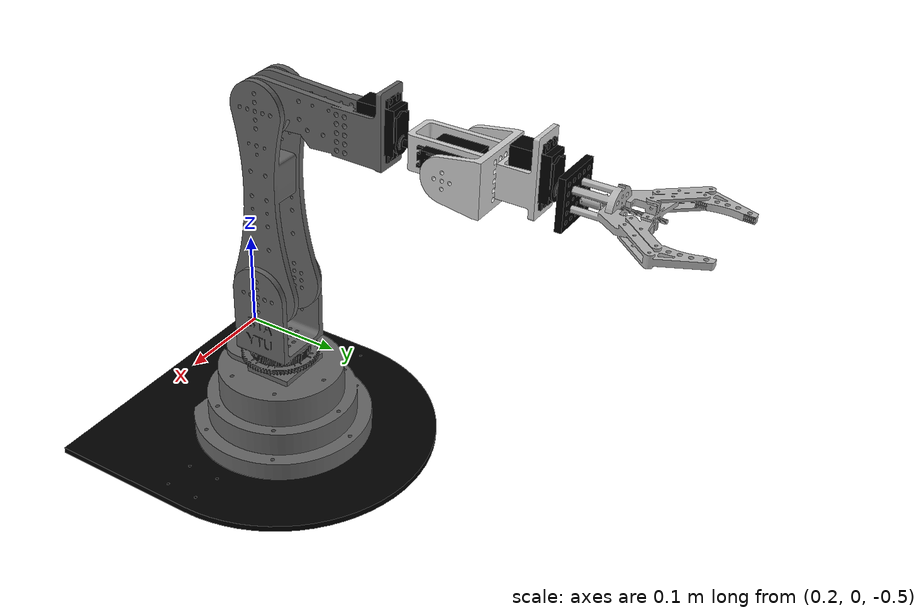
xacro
<?xml version="1.0" encoding="utf-8" ?>
<!-- |    This document was autogenerated by xacro from /home/henry/ROS/simulation_ws/src/simulation/robotarm_description/urdf/robotarm.xacro | -->
<!-- |    EDITING THIS FILE BY HAND IS NOT RECOMMENDED                                 | -->
<robot name="robotarm">
    <material name="silver">
        <color rgba="0.700 0.700 0.700 1.000" />
    </material>
    <material name="black">
        <color rgba="0.0 0.0 0.0 1.0" />
    </material>
    <material name="blue">
        <color rgba="0.0 0.0 0.8 1.0" />
    </material>
    <material name="green">
        <color rgba="0.0 1.0 0.0 1.0" />
    </material>
    <material name="grey">
        <color rgba="0.4 0.4 0.4 1.0" />
    </material>
    <material name="orange">
        <color rgba="1.0 0.423529411765 0.0392156862745 1.0" />
    </material>
    <material name="brown">
        <color rgba="0.870588235294 0.811764705882 0.764705882353 1.0" />
    </material>
    <material name="red">
        <color rgba="0.4 0.2 0.2 1.0" />
    </material>
    <material name="white">
        <color rgba="0.8 0.8 0.8 1.0" />
    </material>
    <transmission name="joint_1_tran">
        <type>transmission_interface/SimpleTransmission</type>
        <joint name="joint_1">
            <hardwareInterface>hardware_interface/PositionJointInterface</hardwareInterface>
        </joint>
        <actuator name="joint_1_actr">
            <hardwareInterface>hardware_interface/PositionJointInterface</hardwareInterface>
            <mechanicalReduction>1</mechanicalReduction>
        </actuator>
    </transmission>
    <transmission name="joint_2_tran">
        <type>transmission_interface/SimpleTransmission</type>
        <joint name="joint_2">
            <hardwareInterface>hardware_interface/PositionJointInterface</hardwareInterface>
        </joint>
        <actuator name="joint_2_actr">
            <hardwareInterface>hardware_interface/PositionJointInterface</hardwareInterface>
            <mechanicalReduction>1</mechanicalReduction>
        </actuator>
    </transmission>
    <transmission name="joint_3_tran">
        <type>transmission_interface/SimpleTransmission</type>
        <joint name="joint_3">
            <hardwareInterface>hardware_interface/PositionJointInterface</hardwareInterface>
        </joint>
        <actuator name="joint_3_actr">
            <hardwareInterface>hardware_interface/PositionJointInterface</hardwareInterface>
            <mechanicalReduction>1</mechanicalReduction>
        </actuator>
    </transmission>
    <transmission name="joint_4_tran">
        <type>transmission_interface/SimpleTransmission</type>
        <joint name="joint_4">
            <hardwareInterface>hardware_interface/PositionJointInterface</hardwareInterface>
        </joint>
        <actuator name="joint_4_actr">
            <hardwareInterface>hardware_interface/PositionJointInterface</hardwareInterface>
            <mechanicalReduction>1</mechanicalReduction>
        </actuator>
    </transmission>
    <transmission name="joint_5_tran">
        <type>transmission_interface/SimpleTransmission</type>
        <joint name="joint_5">
            <hardwareInterface>hardware_interface/PositionJointInterface</hardwareInterface>
        </joint>
        <actuator name="joint_5_actr">
            <hardwareInterface>hardware_interface/PositionJointInterface</hardwareInterface>
            <mechanicalReduction>1</mechanicalReduction>
        </actuator>
    </transmission>
    <transmission name="joint_6_tran">
        <type>transmission_interface/SimpleTransmission</type>
        <joint name="joint_6">
            <hardwareInterface>hardware_interface/PositionJointInterface</hardwareInterface>
        </joint>
        <actuator name="joint_6_actr">
            <hardwareInterface>hardware_interface/PositionJointInterface</hardwareInterface>
            <mechanicalReduction>1</mechanicalReduction>
        </actuator>
    </transmission>
    <gazebo>
        <plugin filename="libgazebo_ros_control.so" name="control" />
    </gazebo>
    <gazebo reference="base_link">
        <material>Gazebo/Black</material>
        <mu1>0.2</mu1>
        <mu2>0.2</mu2>
        <selfCollide>true</selfCollide>
        <gravity>true</gravity>
    </gazebo>
    <gazebo reference="link_1_1">
        <material>Gazebo/FlatBlack</material>
        <mu1>0.2</mu1>
        <mu2>0.2</mu2>
        <selfCollide>true</selfCollide>
    </gazebo>
    <gazebo reference="link_2_1">
        <material>Gazebo/Black</material>
        <mu1>0.2</mu1>
        <mu2>0.2</mu2>
        <selfCollide>true</selfCollide>
    </gazebo>
    <gazebo reference="link_3_1">
        <material>Gazebo/FlatBlack</material>
        <mu1>0.2</mu1>
        <mu2>0.2</mu2>
        <selfCollide>true</selfCollide>
    </gazebo>
    <gazebo reference="link_4_1">
        <material>Gazebo/White</material>
        <mu1>0.2</mu1>
        <mu2>0.2</mu2>
        <selfCollide>true</selfCollide>
    </gazebo>
    <gazebo reference="link_5_1">
        <material>Gazebo/FlatBlack</material>
        <mu1>0.2</mu1>
        <mu2>0.2</mu2>
        <selfCollide>true</selfCollide>
    </gazebo>
    <gazebo reference="link_6_1">
        <material>Gazebo/White</material>
        <mu1>0.2</mu1>
        <mu2>0.2</mu2>
        <selfCollide>true</selfCollide>
    </gazebo>
    <gazebo reference="link_7_1">
        <material>Gazebo/FlatBlack</material>
        <mu1>0.2</mu1>
        <mu2>0.2</mu2>
        <selfCollide>true</selfCollide>
    </gazebo>
    <gazebo reference="link_8_1">
        <material>Gazebo/Black</material>
        <mu1>0.2</mu1>
        <mu2>0.2</mu2>
        <selfCollide>true</selfCollide>
    </gazebo>
    <gazebo reference="link_9_1">
        <material>Gazebo/White</material>
        <mu1>0.2</mu1>
        <mu2>0.2</mu2>
        <selfCollide>true</selfCollide>
    </gazebo>
    <gazebo reference="link_10_1">
        <material>Gazebo/Black</material>
        <mu1>0.2</mu1>
        <mu2>0.2</mu2>
        <selfCollide>true</selfCollide>
    </gazebo>
    <gazebo reference="link_11_1">
        <material>Gazebo/White</material>
        <mu1>0.2</mu1>
        <mu2>0.2</mu2>
        <selfCollide>true</selfCollide>
    </gazebo>
    <gazebo reference="link_12_1">
        <material>Gazebo/FlatBlack</material>
        <mu1>0.2</mu1>
        <mu2>0.2</mu2>
        <selfCollide>true</selfCollide>
    </gazebo>
    <gazebo reference="link_13_1">
        <material>Gazebo/Black</material>
        <mu1>0.2</mu1>
        <mu2>0.2</mu2>
        <selfCollide>true</selfCollide>
    </gazebo>
    <gazebo reference="grabber_1">
        <material>Gazebo/FlatBlack</material>
        <mu1>0.2</mu1>
        <mu2>0.2</mu2>
        <selfCollide>true</selfCollide>
    </gazebo>
    <link name="base_link">

<inertial>
            <origin rpy="0 0 0" xyz="0.3027889997472169 0.10052323881558602 -0.5238589999999963" />
            <mass value="0.5695940432953642" />
            <inertia ixx="0.003709" ixy="-0.0" ixz="0.0" iyy="0.003816" iyz="0.0" izz="0.007522" />
        </inertial>

        <visual>
            <origin rpy="0 0 0" xyz="0 0 0" />
            <geometry>
                <mesh filename="package://robotarm_description/meshes/base_link.stl" scale="0.001 0.001 0.001" />
            </geometry>
            <material name="black" />
        </visual>
        <collision>
            <origin rpy="0 0 0" xyz="0 0 0" />
            <geometry>
                <mesh filename="package://robotarm_description/meshes/base_link.stl" scale="0.001 0.001 0.001" />
            </geometry>
        </collision>
    </link>
    <link name="link_1_1">

<inertial>
            <origin rpy="0 0 0" xyz="-1.8697871029260682e-10 0.004753535232433076 0.03231546386634754" />
            <mass value="0.986632768311051" />
            <inertia ixx="0.001937" ixy="-0.0" ixz="-0.0" iyy="0.002238" iyz="4.5e-05" izz="0.003229" />
        </inertial>

        <visual>
            <origin rpy="0 0 0" xyz="-0.302789 -0.114578 0.520859" />
            <geometry>
                <mesh filename="package://robotarm_description/meshes/link_1_1.stl" scale="0.001 0.001 0.001" />
            </geometry>
            <material name="grey" />
        </visual>
        <collision>
            <origin rpy="0 0 0" xyz="-0.302789 -0.114578 0.520859" />
            <geometry>
                <mesh filename="package://robotarm_description/meshes/link_1_1.stl" scale="0.001 0.001 0.001" />
            </geometry>
        </collision>
    </link>
    <link name="link_2_1">

<inertial>
            <origin rpy="0 0 0" xyz="-1.8688406377975753e-10 -4.917767099238413e-07 0.011643712562816266" />
            <mass value="0.1359095393443759" />
            <inertia ixx="1.6e-05" ixy="0.0" ixz="-0.0" iyy="1.6e-05" iyz="0.0" izz="1.9e-05" />
        </inertial>

        <visual>
            <origin rpy="0 0 0" xyz="-0.302789 -0.114578 0.460859" />
            <geometry>
                <mesh filename="package://robotarm_description/meshes/link_2_1.stl" scale="0.001 0.001 0.001" />
            </geometry>
            <material name="black" />
        </visual>
        <collision>
            <origin rpy="0 0 0" xyz="-0.302789 -0.114578 0.460859" />
            <geometry>
                <mesh filename="package://robotarm_description/meshes/link_2_1.stl" scale="0.001 0.001 0.001" />
            </geometry>
        </collision>
    </link>
    <link name="link_3_1">

<inertial>
            <origin rpy="0 0 0" xyz="3.457651543831153e-05 -5.149846274699055e-07 0.038555020607762114" />
            <mass value="0.734301344058547" />
            <inertia ixx="0.000886" ixy="0.0" ixz="4e-06" iyy="0.0011" iyz="0.0" izz="0.000593" />
        </inertial>

        <visual>
            <origin rpy="0 0 0" xyz="-0.302789 -0.114578 0.436859" />
            <geometry>
                <mesh filename="package://robotarm_description/meshes/link_3_1.stl" scale="0.001 0.001 0.001" />
            </geometry>
            <material name="grey" />
        </visual>
        <collision>
            <origin rpy="0 0 0" xyz="-0.302789 -0.114578 0.436859" />
            <geometry>
                <mesh filename="package://robotarm_description/meshes/link_3_1.stl" scale="0.001 0.001 0.001" />
            </geometry>
        </collision>
    </link>
    <link name="link_4_1">

<inertial>
            <origin rpy="0 0 0" xyz="0.0014999998130816317 -4.917794316078306e-07 -5.14804865403562e-12" />
            <mass value="0.0015536746468328695" />
            <inertia ixx="0.0" ixy="-0.0" ixz="-0.0" iyy="0.0" iyz="-0.0" izz="0.0" />
        </inertial>

        <visual>
            <origin rpy="0 0 0" xyz="-0.278789 -0.114578 0.358359" />
            <geometry>
                <mesh filename="package://robotarm_description/meshes/link_4_1.stl" scale="0.001 0.001 0.001" />
            </geometry>
            <material name="white" />
        </visual>
        <collision>
            <origin rpy="0 0 0" xyz="-0.278789 -0.114578 0.358359" />
            <geometry>
                <mesh filename="package://robotarm_description/meshes/link_4_1.stl" scale="0.001 0.001 0.001" />
            </geometry>
        </collision>
    </link>
    <link name="link_5_1">

<inertial>
            <origin rpy="0 0 0" xyz="0.02074999941017852 2.555022859669631e-05 0.08450695857811241" />
            <mass value="0.18341801530628282" />
            <inertia ixx="0.000814" ixy="0.0" ixz="-0.0" iyy="0.00083" iyz="-0.0" izz="8.3e-05" />
        </inertial>

        <visual>
            <origin rpy="0 0 0" xyz="-0.281789 -0.114578 0.358359" />
            <geometry>
                <mesh filename="package://robotarm_description/meshes/link_5_1.stl" scale="0.001 0.001 0.001" />
            </geometry>
            <material name="grey" />
        </visual>
        <collision>
            <origin rpy="0 0 0" xyz="-0.281789 -0.114578 0.358359" />
            <geometry>
                <mesh filename="package://robotarm_description/meshes/link_5_1.stl" scale="0.001 0.001 0.001" />
            </geometry>
        </collision>
    </link>
    <link name="link_6_1">

<inertial>
            <origin rpy="0 0 0" xyz="0.0014999998130840186 -4.917651367092324e-07 -3.824804362118073e-11" />
            <mass value="0.0015536746468328695" />
            <inertia ixx="0.0" ixy="-0.0" ixz="-0.0" iyy="0.0" iyz="-0.0" izz="0.0" />
        </inertial>

        <visual>
            <origin rpy="0 0 0" xyz="-0.287789 -0.114578 0.178359" />
            <geometry>
                <mesh filename="package://robotarm_description/meshes/link_6_1.stl" scale="0.001 0.001 0.001" />
            </geometry>
            <material name="white" />
        </visual>
        <collision>
            <origin rpy="0 0 0" xyz="-0.287789 -0.114578 0.178359" />
            <geometry>
                <mesh filename="package://robotarm_description/meshes/link_6_1.stl" scale="0.001 0.001 0.001" />
            </geometry>
        </collision>
    </link>
    <link name="link_7_1">

<inertial>
            <origin rpy="0 0 0" xyz="0.011710659258666545 0.050456556016627865 0.0013142964981744387" />
            <mass value="0.08989065409828118" />
            <inertia ixx="0.000181" ixy="-1e-06" ixz="-0.0" iyy="2.9e-05" iyz="-4e-06" izz="0.000171" />
        </inertial>

        <visual>
            <origin rpy="0 0 0" xyz="-0.290789 -0.114578 0.178359" />
            <geometry>
                <mesh filename="package://robotarm_description/meshes/link_7_1.stl" scale="0.001 0.001 0.001" />
            </geometry>
            <material name="grey" />
        </visual>
        <collision>
            <origin rpy="0 0 0" xyz="-0.290789 -0.114578 0.178359" />
            <geometry>
                <mesh filename="package://robotarm_description/meshes/link_7_1.stl" scale="0.001 0.001 0.001" />
            </geometry>
        </collision>
    </link>
    <link name="link_8_1">

<inertial>
            <origin rpy="0 0 0" xyz="-0.004750000186926617 -0.008056568949482312 -0.024648856253007" />
            <mass value="0.2407180144714228" />
            <inertia ixx="6.3e-05" ixy="-0.0" ixz="-0.0" iyy="4.2e-05" iyz="1e-06" izz="3.7e-05" />
        </inertial>

        <visual>
            <origin rpy="0 0 0" xyz="-0.307539 -0.237219 0.14375" />
            <geometry>
                <mesh filename="package://robotarm_description/meshes/link_8_1.stl" scale="0.001 0.001 0.001" />
            </geometry>
            <material name="black" />
        </visual>
        <collision>
            <origin rpy="0 0 0" xyz="-0.307539 -0.237219 0.14375" />
            <geometry>
                <mesh filename="package://robotarm_description/meshes/link_8_1.stl" scale="0.001 0.001 0.001" />
            </geometry>
        </collision>
    </link>
    <link name="link_9_1">

<inertial>
            <origin rpy="0 0 0" xyz="-0.007734910162193742 0.028870766333701725 2.1412395295739017e-07" />
            <mass value="0.15826451533791172" />
            <inertia ixx="9.7e-05" ixy="5e-06" ixz="-0.0" iyy="4e-05" iyz="0.0" izz="0.000108" />
        </inertial>

        <visual>
            <origin rpy="0 0 0" xyz="-0.302789 -0.258219 0.178359" />
            <geometry>
                <mesh filename="package://robotarm_description/meshes/link_9_1.stl" scale="0.001 0.001 0.001" />
            </geometry>
            <material name="white" />
        </visual>
        <collision>
            <origin rpy="0 0 0" xyz="-0.302789 -0.258219 0.178359" />
            <geometry>
                <mesh filename="package://robotarm_description/meshes/link_9_1.stl" scale="0.001 0.001 0.001" />
            </geometry>
        </collision>
    </link>
    <link name="link_10_1">

<inertial>
            <origin rpy="0 0 0" xyz="-0.008056178444775353 -0.0243514216477424 -0.004749786152630581" />
            <mass value="0.2407180144714228" />
            <inertia ixx="4.2e-05" ixy="-1e-06" ixz="0.0" iyy="3.7e-05" iyz="-0.0" izz="6.3e-05" />
        </inertial>

        <visual>
            <origin rpy="0 0 0" xyz="-0.314789 -0.321969 0.173359" />
            <geometry>
                <mesh filename="package://robotarm_description/meshes/link_10_1.stl" scale="0.001 0.001 0.001" />
            </geometry>
            <material name="black" />
        </visual>
        <collision>
            <origin rpy="0 0 0" xyz="-0.314789 -0.321969 0.173359" />
            <geometry>
                <mesh filename="package://robotarm_description/meshes/link_10_1.stl" scale="0.001 0.001 0.001" />
            </geometry>
        </collision>
    </link>
    <link name="link_11_1">

<inertial>
            <origin rpy="0 0 0" xyz="-0.029413719143845662 0.02892119873865162 0.0011736127180720646" />
            <mass value="0.39249068379170354" />
            <inertia ixx="0.000264" ixy="1.3e-05" ixz="2e-06" iyy="0.000282" iyz="-1.7e-05" izz="0.000382" />
        </inertial>

        <visual>
            <origin rpy="0 0 0" xyz="-0.335789 -0.307578 0.178109" />
            <geometry>
                <mesh filename="package://robotarm_description/meshes/link_11_1.stl" scale="0.001 0.001 0.001" />
            </geometry>
            <material name="white" />
        </visual>
        <collision>
            <origin rpy="0 0 0" xyz="-0.335789 -0.307578 0.178109" />
            <geometry>
                <mesh filename="package://robotarm_description/meshes/link_11_1.stl" scale="0.001 0.001 0.001" />
            </geometry>
        </collision>
    </link>
    <link name="link_12_1">

<inertial>
            <origin rpy="0 0 0" xyz="-0.004749226546193808 -0.008056670005938016 -0.02464885625438537" />
            <mass value="0.24071801447142827" />
            <inertia ixx="6.3e-05" ixy="-0.0" ixz="0.0" iyy="4.2e-05" iyz="1e-06" izz="3.7e-05" />
        </inertial>

        <visual>
            <origin rpy="0 0 0" xyz="-0.307538 -0.375732 0.1435" />
            <geometry>
                <mesh filename="package://robotarm_description/meshes/link_12_1.stl" scale="0.001 0.001 0.001" />
            </geometry>
            <material name="black" />
        </visual>
        <collision>
            <origin rpy="0 0 0" xyz="-0.307538 -0.375732 0.1435" />
            <geometry>
                <mesh filename="package://robotarm_description/meshes/link_12_1.stl" scale="0.001 0.001 0.001" />
            </geometry>
        </collision>
    </link>
    <link name="link_13_1">

<inertial>
            <origin rpy="0 0 0" xyz="-2.7483151865403954e-09 0.0029995082518860516 3.0996027545193705e-05" />
            <mass value="0.012367021038363606" />
            <inertia ixx="2e-06" ixy="-0.0" ixz="-0.0" iyy="4e-06" iyz="0.0" izz="2e-06" />
        </inertial>

        <visual>
            <origin rpy="0 0 0" xyz="-0.302789 -0.396732 0.178109" />
            <geometry>
                <mesh filename="package://robotarm_description/meshes/link_13_1.stl" scale="0.001 0.001 0.001" />
            </geometry>
            <material name="black" />
        </visual>
        <collision>
            <origin rpy="0 0 0" xyz="-0.302789 -0.396732 0.178109" />
            <geometry>
                <mesh filename="package://robotarm_description/meshes/link_13_1.stl" scale="0.001 0.001 0.001" />
            </geometry>
        </collision>
    </link>
    <link name="grabber_1">

<inertial>
            <origin rpy="0 0 0" xyz="-0.008103951685665245 0.055697789484993654 -0.007903234107681345" />
            <mass value="0.23807227969898195" />
            <inertia ixx="0.000186" ixy="2e-06" ixz="-0.0" iyy="0.000212" iyz="-0.0" izz="0.000388" />
        </inertial>

        <visual>
            <origin rpy="0 0 0" xyz="-0.310789 -0.402732 0.170109" />
            <geometry>
                <mesh filename="package://robotarm_description/meshes/grabber_1.stl" scale="0.001 0.001 0.001" />
            </geometry>
            <material name="silver" />
        </visual>
        <collision>
            <origin rpy="0 0 0" xyz="-0.310789 -0.402732 0.170109" />
            <geometry>
                <mesh filename="package://robotarm_description/meshes/grabber_1.stl" scale="0.001 0.001 0.001" />
            </geometry>
        </collision>
    </link>
    <joint name="Rigid1" type="fixed">
        <origin rpy="0 0 0" xyz="0.302789 0.114578 -0.520859" />
        <parent link="base_link" />
        <child link="link_1_1" />
    </joint>
    <joint name="Rigid2" type="fixed">
        <origin rpy="0 0 0" xyz="0.0 0.0 0.06" />
        <parent link="link_1_1" />
        <child link="link_2_1" />
    </joint>
    <joint name="joint_1" type="continuous">
        <origin rpy="0 0 0" xyz="0.0 0.0 0.024" />
        <parent link="link_2_1" />
        <child link="link_3_1" />
        <axis xyz="0.0 0.0 1.0" />
    </joint>
    <joint name="Rigid4" type="fixed">
        <origin rpy="0 0 0" xyz="-0.024 0.0 0.0785" />
        <parent link="link_3_1" />
        <child link="link_4_1" />
    </joint>
    <joint name="joint_2" type="continuous">
        <origin rpy="0 0 0" xyz="0.003 0.0 0.0" />
        <parent link="link_4_1" />
        <child link="link_5_1" />
        <axis xyz="1.0 0.0 -0.0" />
    </joint>
    <joint name="Rigid6" type="fixed">
        <origin rpy="0 0 0" xyz="0.006 0.0 0.18" />
        <parent link="link_5_1" />
        <child link="link_6_1" />
    </joint>
    <joint name="joint_3" type="continuous">
        <origin rpy="0 0 0" xyz="0.003 0.0 0.0" />
        <parent link="link_6_1" />
        <child link="link_7_1" />
        <axis xyz="1.0 0.0 -0.0" />
    </joint>
    <joint name="Rigid8" type="fixed">
        <origin rpy="0 0 0" xyz="0.01675 0.122641 0.034609" />
        <parent link="link_7_1" />
        <child link="link_8_1" />
    </joint>
    <joint name="joint_4" type="continuous">
        <origin rpy="0 0 0" xyz="-0.00475 0.021 -0.034609" />
        <parent link="link_8_1" />
        <child link="link_9_1" />
        <axis xyz="-0.0 1.0 0.0" />
    </joint>
    <joint name="Rigid10" type="fixed">
        <origin rpy="0 0 0" xyz="0.012 0.06375 0.005" />
        <parent link="link_9_1" />
        <child link="link_10_1" />
    </joint>
    <joint name="joint_5" type="continuous">
        <origin rpy="0 0 0" xyz="0.021 -0.014391 -0.00475" />
        <parent link="link_10_1" />
        <child link="link_11_1" />
        <axis xyz="1.0 -0.0 -0.0" />
    </joint>
    <joint name="Rigid12" type="fixed">
        <origin rpy="0 0 0" xyz="-0.028251 0.068154 0.034609" />
        <parent link="link_11_1" />
        <child link="link_12_1" />
    </joint>
    <joint name="joint_6" type="continuous">
        <origin rpy="0 0 0" xyz="-0.004749 0.021 -0.034609" />
        <parent link="link_12_1" />
        <child link="link_13_1" />
        <axis xyz="0.0 1.0 0.0" />
    </joint>
    <joint name="Rigid14" type="fixed">
        <origin rpy="0 0 0" xyz="0.008 0.006 0.008" />
        <parent link="link_13_1" />
        <child link="grabber_1" />
    </joint>

</robot>
